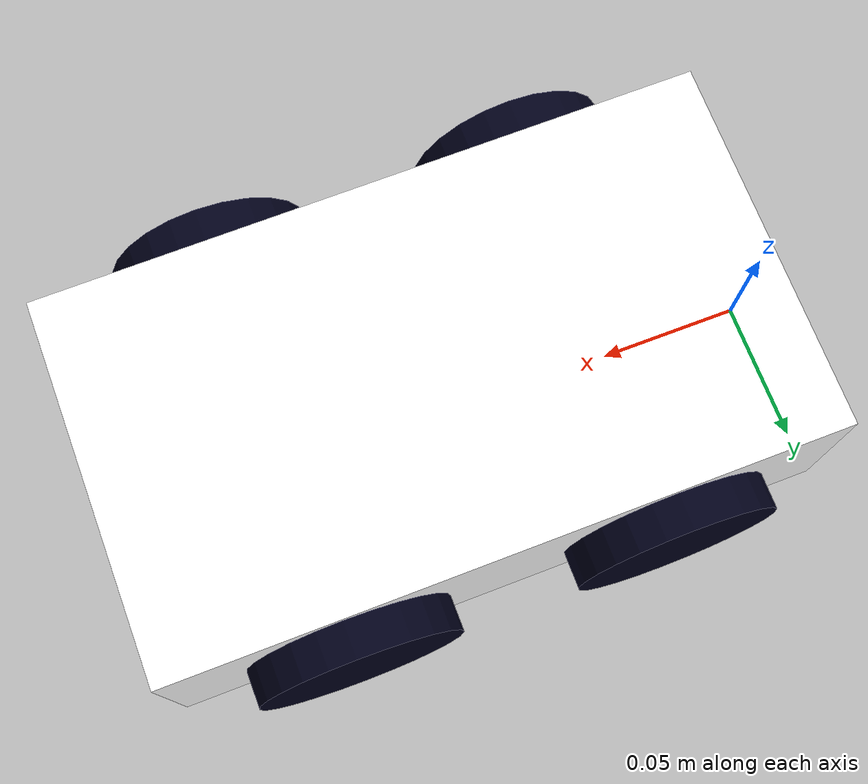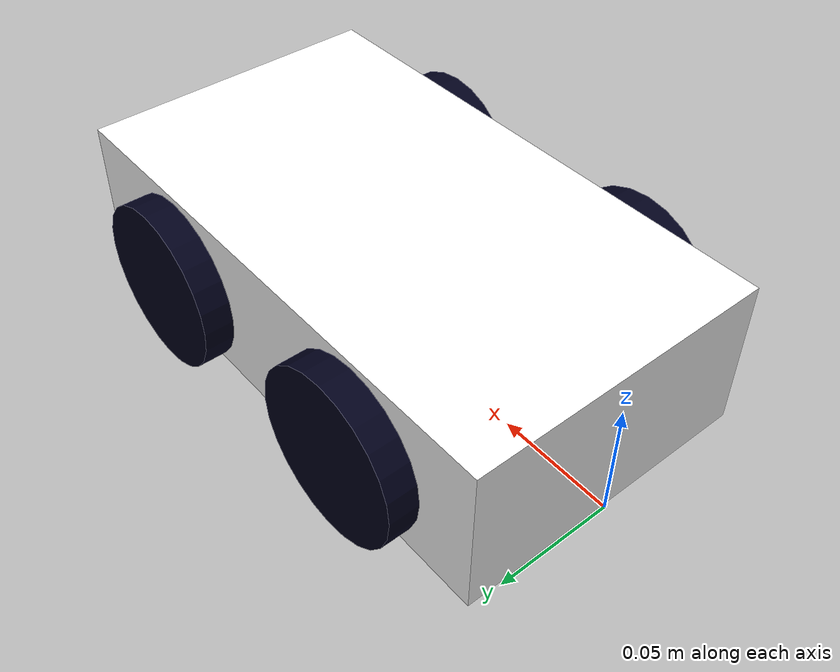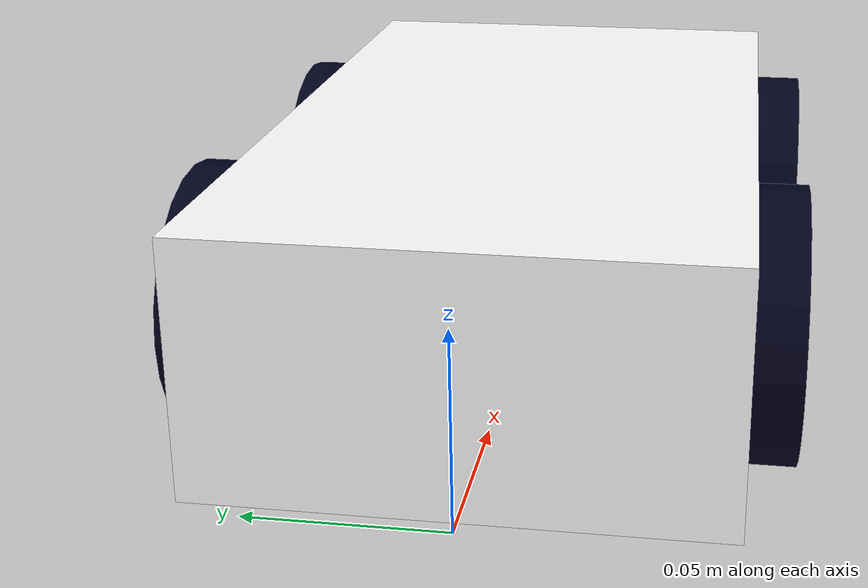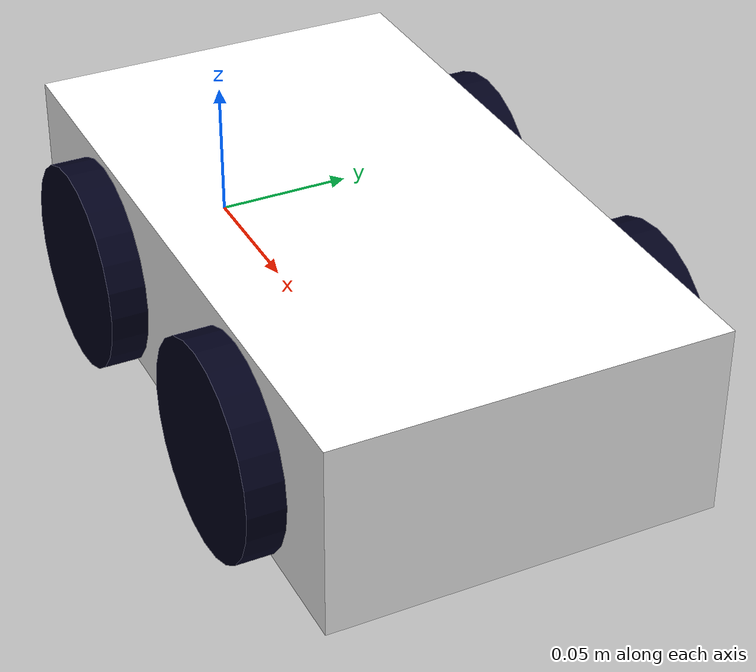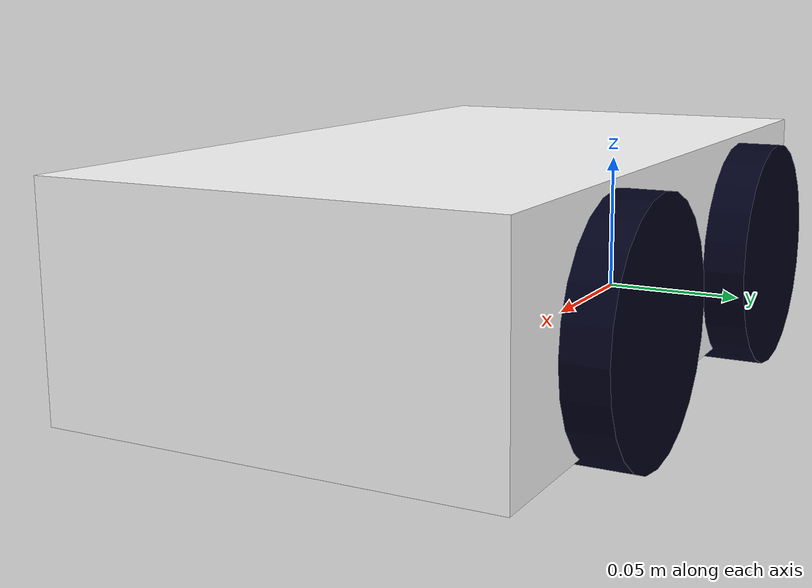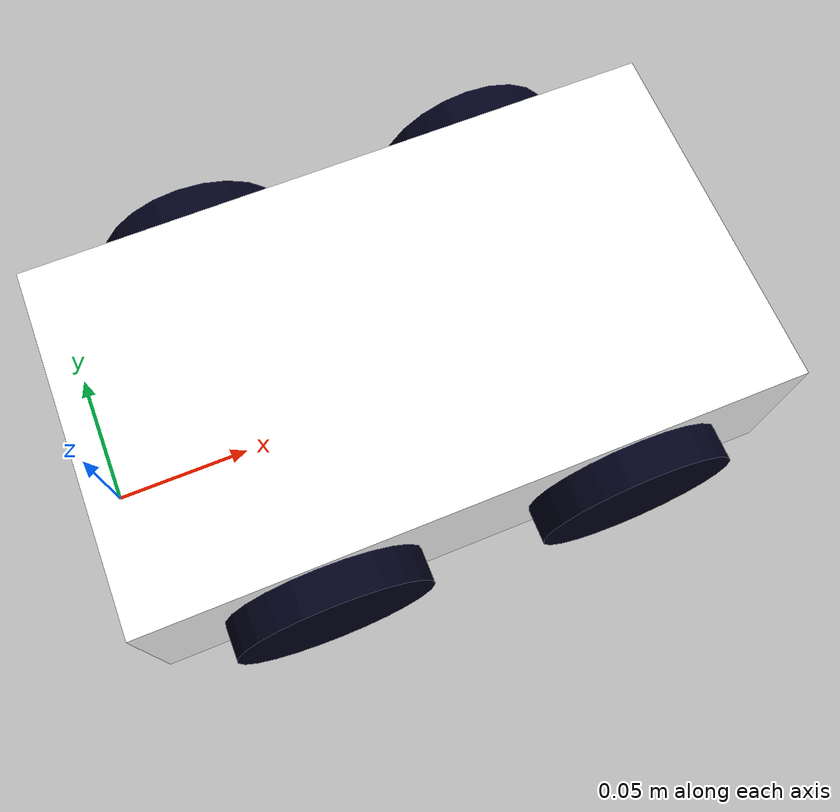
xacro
<?xml version="1.0"?>
<robot xmlns:xacro="http://www.ros.org/wiki/xacro">

    <xacro:include filename="inertial_macros.xacro" />

    <material name="white">
        <color rgba="1 1 1 1"/>
    </material>

    <material name="blue">
        <color rgba="0 0 0.1 1"/>
    </material>

    <material name="red">
        <color rgba="0.1 1 1 0.1"/>
    </material>

    <material name="teal">
        <color rgba="0 1 1 1"/>
    </material>

    <!-- BASE LINK -->
    <link name="base_link">
    </link>

    <!-- BODY LINK -->
    <joint name="body_joint" type="fixed">
        <parent link="base_link"/>
        <child link="body"/>
        <origin xyz="0.115 0 0.035"/>
    </joint>

    <link name="body">
        <visual>
            <origin xyz="0 0 0"/>
            <geometry>
                <box size="0.23 0.13 0.065"/>
            </geometry>
            <material name="white"/>
        </visual>
        <collision>
            <origin xyz="0 0 0"/>
            <geometry>
                <box size="0.23 0.13 0.065"/>
            </geometry>
        </collision>
        <xacro:inertial_box mass="0.5" x="0.23" y="0.13" z="0.065">
            <origin xyz="0 0 0" rpy="0 0 0"/>
        </xacro:inertial_box>
    </link>

    <!-- LEFT REAR WHEEL -->
    <joint name="left_rear_wheel_joint" type="continuous">
        <parent link="body"/>
        <child link="left_rear_wheel"/>
        <!-- Adjusted position relative to the body -->
        <origin xyz="-0.055 0.065 -0.005" rpy="-${pi/2} 0 0"/>
        <axis xyz="0 0 1"/>
    </joint>

    <link name="left_rear_wheel">
        <visual>
            <geometry>
                <cylinder radius="0.035" length="0.025"/>
            </geometry>
            <material name="blue"/>
        </visual>
        <collision>
            <geometry>
                <cylinder radius="0.035" length="0.025"/>
            </geometry>
        </collision>
        <xacro:inertial_cylinder mass="0.1" length="0.025" radius="0.035">
            <origin xyz="0 0 0" rpy="0 0 0"/>
        </xacro:inertial_cylinder>
    </link>

    <!-- LEFT FRONT WHEEL -->
    <joint name="left_front_wheel_joint" type="continuous">
        <parent link="body"/>
        <child link="left_front_wheel"/>
        <!-- Adjusted position relative to the body -->
        <origin xyz="0.055 0.065 -0.005" rpy="-${pi/2} 0 0"/>
        <axis xyz="0 0 1"/>
    </joint>

    <link name="left_front_wheel">
        <visual>
            <geometry>
                <cylinder radius="0.035" length="0.025"/>
            </geometry>
            <material name="blue"/>
        </visual>
        <collision>
            <geometry>
                <cylinder radius="0.035" length="0.025"/>
            </geometry>
        </collision>
        <xacro:inertial_cylinder mass="0.1" length="0.025" radius="0.035">
            <origin xyz="0 0 0" rpy="0 0 0"/>
        </xacro:inertial_cylinder>
    </link>

    <!-- RIGHT FRONT WHEEL -->
    <joint name="right_front_wheel_joint" type="continuous">
        <parent link="body"/>
        <child link="right_front_wheel"/>
        <!-- Adjusted position relative to the body -->
        <origin xyz="0.055 -0.065 -0.005" rpy="${pi/2} 0 0"/>
        <axis xyz="0 0 -1"/>
    </joint>

    <link name="right_front_wheel">
        <visual>
            <geometry>
                <cylinder radius="0.035" length="0.025"/>
            </geometry>
            <material name="blue"/>
        </visual>
        <collision>
            <geometry>
                <cylinder radius="0.035" length="0.025"/>
            </geometry>
            <material name="blue"/>
        </collision>
        <xacro:inertial_cylinder mass="0.1" length="0.025" radius="0.035">
            <origin xyz="0 0 0" rpy="0 0 0"/>
        </xacro:inertial_cylinder>
    </link>

    <!-- RIGHT REAR WHEEL -->
    <joint name="right_rear_wheel_joint" type="continuous">
        <parent link="body"/>
        <child link="right_rear_wheel"/>
        <!-- Adjusted position relative to the body -->
        <origin xyz="-0.055 -0.065 -0.005" rpy="${pi/2} 0 0"/>
        <axis xyz="0 0 -1"/>
    </joint>

    <link name="right_rear_wheel">
        <visual>
            <geometry>
                <cylinder radius="0.035" length="0.025"/>
            </geometry>
            <material name="blue"/>
        </visual>
        <collision>
            <geometry>
                <cylinder radius="0.035" length="0.025"/>
            </geometry>
        </collision>
        <xacro:inertial_cylinder mass="0.1" length="0.025" radius="0.035">
            <origin xyz="0 0 0" rpy="0 0 0"/>
        </xacro:inertial_cylinder>
    </link>

</robot>
